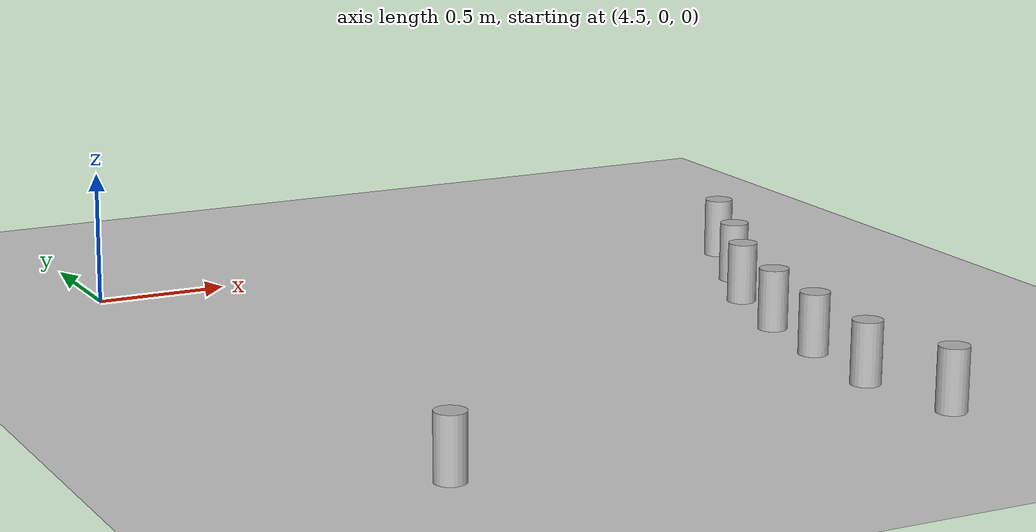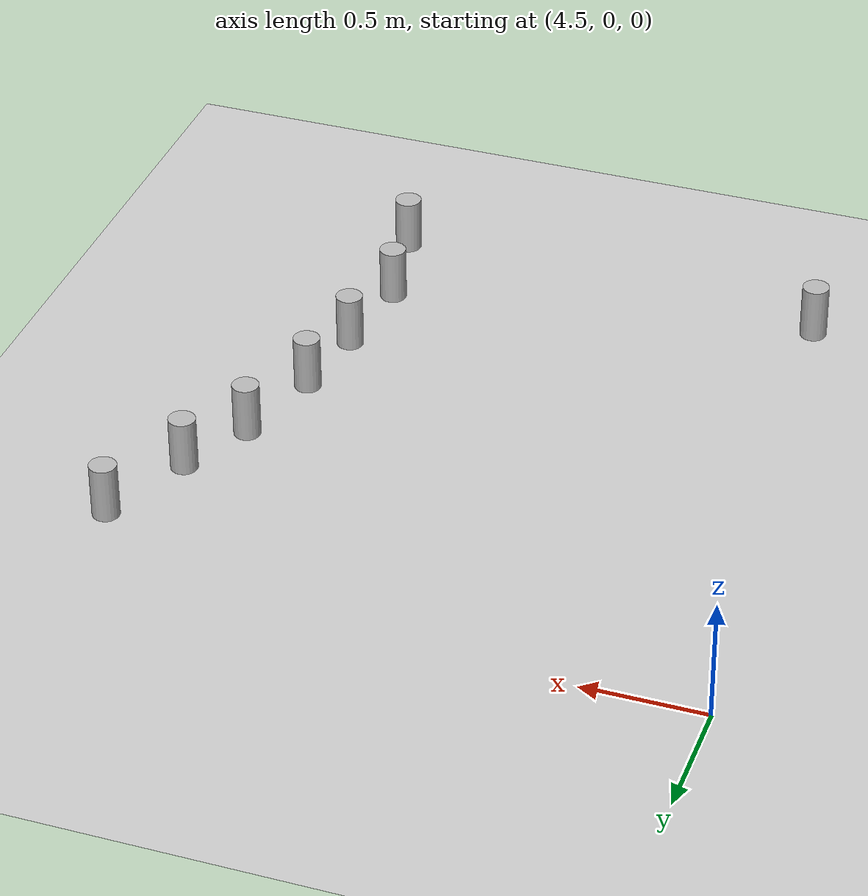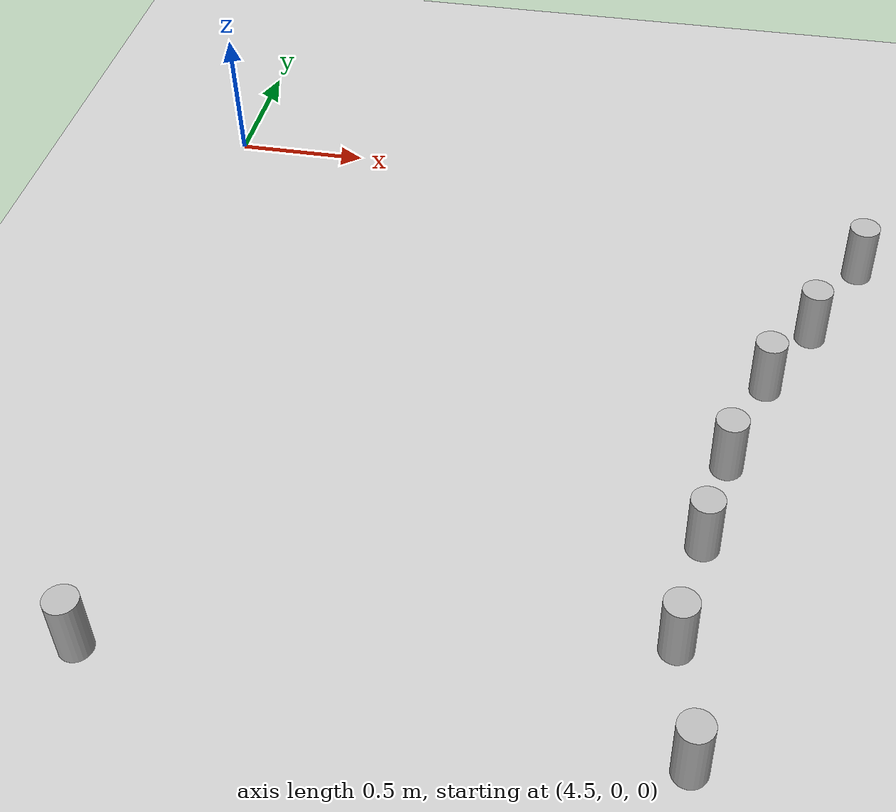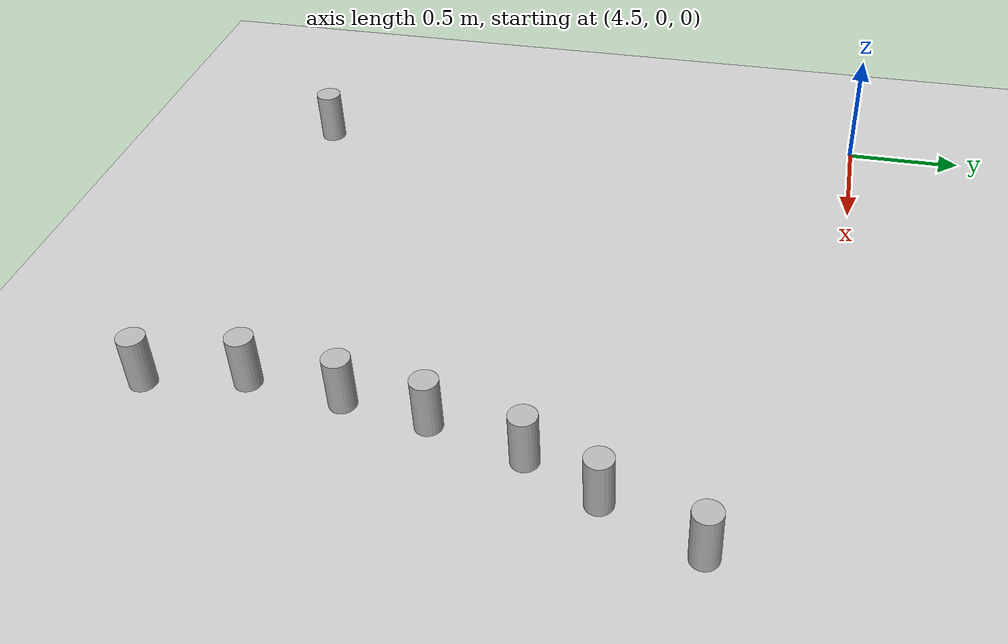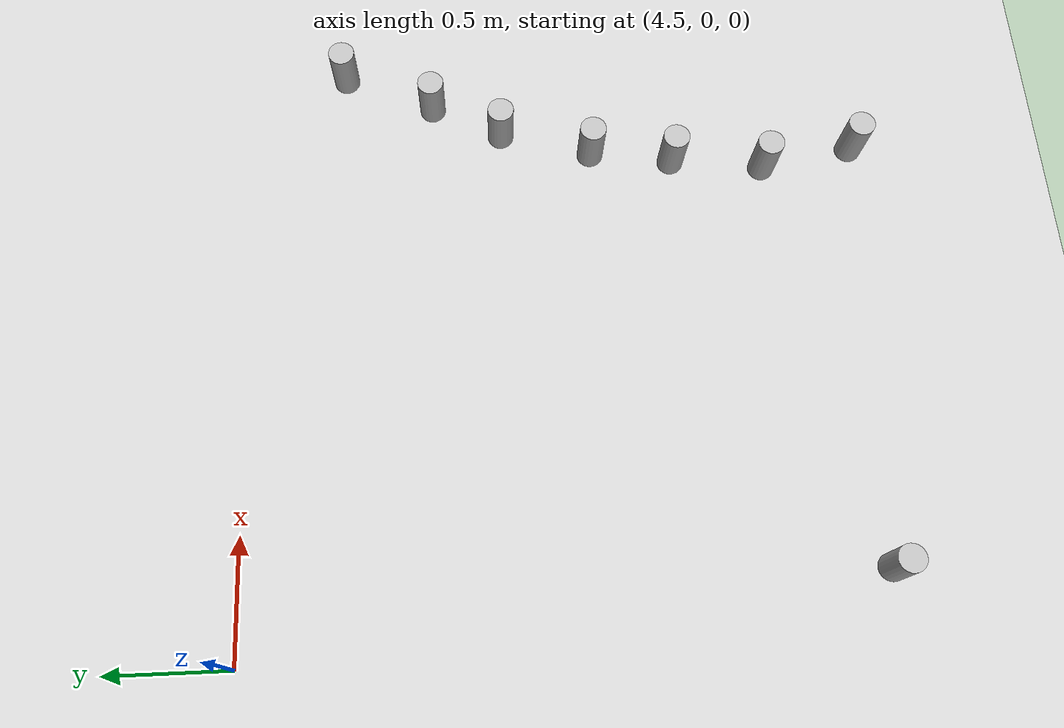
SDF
<sdf version="1.7">
 <world name="default">
  <model name="ground_plane">
   <static>1</static>
   <link name="link">
    <collision name="collision">
     <geometry><plane><normal>0 0 1</normal><size>100 100</size></plane></geometry>
     <surface>
      <contact><collide_bitmask>65535</collide_bitmask></contact>
      <friction><ode><mu>100</mu><mu2>50</mu2></ode></friction>
     </surface>
    </collision>
    <visual name="visual">
     <cast_shadows>0</cast_shadows>
     <geometry><plane><normal>0 0 1</normal><size>100 100</size></plane></geometry>
     <material>
      <script><uri>file://media/materials/scripts/gazebo.material</uri><name>Gazebo/Grey</name></script>
     </material>
    </visual>
   </link>
  </model>
  <model name="beer_clone_3">
   <link name="link">
    <pose>0 0 0.115 0 -0 0</pose>
    <inertial>
     <mass>0.39</mass>
     <inertia><ixx>0.00058</ixx><ixy>0</ixy><ixz>0</ixz><iyy>0.00058</iyy><iyz>0</iyz><izz>0.00019</izz></inertia>
    </inertial>
    <collision name="collision">
     <geometry><cylinder><radius>0.055</radius><length>0.23</length></cylinder></geometry>
    </collision>
    <visual name="visual">
     <geometry><cylinder><radius>0.055</radius><length>0.23</length></cylinder></geometry>
     <material>
      <script>
       <uri>model://beer/materials/scripts</uri>
       <uri>model://beer/materials/textures</uri>
       <name>Beer/Diffuse</name>
      </script>
     </material>
    </visual>
   </link>
   <pose>4.77323 -2.50039 0 0 -0 0</pose>
  </model>
  <model name="beer_clone_13">
   <link name="link">
    <pose>0 0 0.115 0 -0 0</pose>
    <inertial>
     <mass>0.39</mass>
     <inertia><ixx>0.00058</ixx><ixy>0</ixy><ixz>0</ixz><iyy>0.00058</iyy><iyz>0</iyz><izz>0.00019</izz></inertia>
    </inertial>
    <collision name="collision">
     <geometry><cylinder><radius>0.055</radius><length>0.23</length></cylinder></geometry>
    </collision>
    <visual name="visual">
     <geometry><cylinder><radius>0.055</radius><length>0.23</length></cylinder></geometry>
     <material>
      <script>
       <uri>model://beer/materials/scripts</uri>
       <uri>model://beer/materials/textures</uri>
       <name>Beer/Diffuse</name>
      </script>
     </material>
    </visual>
   </link>
   <pose>6.58421 -2.60151 0 0 -0 0</pose>
  </model>
  <model name="beer_clone_14">
   <link name="link">
    <pose>0 0 0.115 0 -0 0</pose>
    <inertial>
     <mass>0.39</mass>
     <inertia><ixx>0.00058</ixx><ixy>0</ixy><ixz>0</ixz><iyy>0.00058</iyy><iyz>0</iyz><izz>0.00019</izz></inertia>
    </inertial>
    <collision name="collision">
     <geometry><cylinder><radius>0.055</radius><length>0.23</length></cylinder></geometry>
    </collision>
    <visual name="visual">
     <geometry><cylinder><radius>0.055</radius><length>0.23</length></cylinder></geometry>
     <material>
      <script>
       <uri>model://beer/materials/scripts</uri>
       <uri>model://beer/materials/textures</uri>
       <name>Beer/Diffuse</name>
      </script>
     </material>
    </visual>
   </link>
   <pose>6.51125 -2.20879 0 0 -0 0</pose>
  </model>
  <model name="beer_clone_15">
   <link name="link">
    <pose>0 0 0.115 0 -0 0</pose>
    <inertial>
     <mass>0.39</mass>
     <inertia><ixx>0.00058</ixx><ixy>0</ixy><ixz>0</ixz><iyy>0.00058</iyy><iyz>0</iyz><izz>0.00019</izz></inertia>
    </inertial>
    <collision name="collision">
     <geometry><cylinder><radius>0.055</radius><length>0.23</length></cylinder></geometry>
    </collision>
    <visual name="visual">
     <geometry><cylinder><radius>0.055</radius><length>0.23</length></cylinder></geometry>
     <material>
      <script>
       <uri>model://beer/materials/scripts</uri>
       <uri>model://beer/materials/textures</uri>
       <name>Beer/Diffuse</name>
      </script>
     </material>
    </visual>
   </link>
   <pose>6.5567 -1.81592 0 0 -0 0</pose>
  </model>
  <model name="beer_clone_16">
   <link name="link">
    <pose>0 0 0.115 0 -0 0</pose>
    <inertial>
     <mass>0.39</mass>
     <inertia><ixx>0.00058</ixx><ixy>0</ixy><ixz>0</ixz><iyy>0.00058</iyy><iyz>0</iyz><izz>0.00019</izz></inertia>
    </inertial>
    <collision name="collision">
     <geometry><cylinder><radius>0.055</radius><length>0.23</length></cylinder></geometry>
    </collision>
    <visual name="visual">
     <geometry><cylinder><radius>0.055</radius><length>0.23</length></cylinder></geometry>
     <material>
      <script>
       <uri>model://beer/materials/scripts</uri>
       <uri>model://beer/materials/textures</uri>
       <name>Beer/Diffuse</name>
      </script>
     </material>
    </visual>
   </link>
   <pose>6.60844 -1.46873 0 0 -0 0</pose>
  </model>
  <model name="beer_clone_17">
   <link name="link">
    <pose>0 0 0.115 0 -0 0</pose>
    <inertial>
     <mass>0.39</mass>
     <inertia><ixx>0.00058</ixx><ixy>0</ixy><ixz>0</ixz><iyy>0.00058</iyy><iyz>0</iyz><izz>0.00019</izz></inertia>
    </inertial>
    <collision name="collision">
     <geometry><cylinder><radius>0.055</radius><length>0.23</length></cylinder></geometry>
    </collision>
    <visual name="visual">
     <geometry><cylinder><radius>0.055</radius><length>0.23</length></cylinder></geometry>
     <material>
      <script>
       <uri>model://beer/materials/scripts</uri>
       <uri>model://beer/materials/textures</uri>
       <name>Beer/Diffuse</name>
      </script>
     </material>
    </visual>
   </link>
   <pose>6.71563 -1.08294 0 0 -0 0</pose>
  </model>
  <model name="beer_clone_18">
   <link name="link">
    <pose>0 0 0.115 0 -0 0</pose>
    <inertial>
     <mass>0.39</mass>
     <inertia><ixx>0.00058</ixx><ixy>0</ixy><ixz>0</ixz><iyy>0.00058</iyy><iyz>0</iyz><izz>0.00019</izz></inertia>
    </inertial>
    <collision name="collision">
     <geometry><cylinder><radius>0.055</radius><length>0.23</length></cylinder></geometry>
    </collision>
    <visual name="visual">
     <geometry><cylinder><radius>0.055</radius><length>0.23</length></cylinder></geometry>
     <material>
      <script>
       <uri>model://beer/materials/scripts</uri>
       <uri>model://beer/materials/textures</uri>
       <name>Beer/Diffuse</name>
      </script>
     </material>
    </visual>
   </link>
   <pose>6.8616 -0.788139 0 0 -0 0</pose>
  </model>
  <model name="beer_clone_19">
   <link name="link">
    <pose>0 0 0.115 0 -0 0</pose>
    <inertial>
     <mass>0.39</mass>
     <inertia><ixx>0.00058</ixx><ixy>0</ixy><ixz>0</ixz><iyy>0.00058</iyy><iyz>0</iyz><izz>0.00019</izz></inertia>
    </inertial>
    <collision name="collision">
     <geometry><cylinder><radius>0.055</radius><length>0.23</length></cylinder></geometry>
    </collision>
    <visual name="visual">
     <geometry><cylinder><radius>0.055</radius><length>0.23</length></cylinder></geometry>
     <material>
      <script>
       <uri>model://beer/materials/scripts</uri>
       <uri>model://beer/materials/textures</uri>
       <name>Beer/Diffuse</name>
      </script>
     </material>
    </visual>
   </link>
   <pose>7.02593 -0.406793 0 0 -0 0</pose>
  </model>
 </world>
</sdf>
